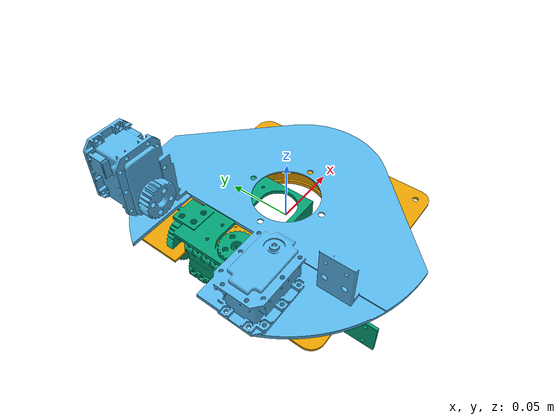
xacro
<?xml version="1.0"?>
<robot name="newrobo" xmlns:xacro="http://www.ros.org/wiki/xacro">
	<xacro:include filename="$(find xacro)/define.xacro" />
	<xacro:include filename="$(find shinobi_newrobo_display)/robot/config.xacro" />
	<xacro:include filename="$(find shinobi_newrobo_display)/robot/flipper_macro.xacro" />
	<xacro:include filename="$(find shinobi_newrobo_display)/robot/starWheel_macro.xacro" />

	<link name="arm_base">
		<visual>
			<origin rpy="0 0 0"
							xyz="0 0 0"/>
			<geometry>
				<mesh filename="${robotPackagePath}/${modelDataResourseFolder}/arm_base.stl"/>
			</geometry>
		</visual>
	</link>

  <joint name="joint_arm_yaw" type="revolute">
    <axis xyz="0 0 1"/>
    <limit 	lower="${DEG2RAD*armYawAngle_min}" effort="1000.0"
						upper="${DEG2RAD*armYawAngle_max}" velocity="0.5"/>
    <origin rpy="0 0 0"
						xyz="0 0 ${armYawStage_fromBodyTop}"/>
    <parent link="arm_base"/>
    <child link="arm_yaw"/>
  </joint>

	<link name="arm_yaw">
		<visual>
			<origin rpy="0 0 0"
							xyz="0 0 0"/>
			<geometry>
				<mesh filename="${robotPackagePath}/${modelDataResourseFolder}/arm_yaw.stl"/>
			</geometry>
		</visual>
	</link>

  <joint name="joint_arm_pitch" type="revolute">
    <axis xyz="0 1 0"/>
    <limit 	lower="${DEG2RAD*armPitchAngle_min}" effort="1000.0"
						upper="${DEG2RAD*armPitchAngle_max}" velocity="0.5"/>
    <origin rpy="0 0 0"
						xyz="${-armPitchAxis_fromYawAxis} 0 0"/>
    <parent link="arm_yaw"/>
    <child link="arm_pitch"/>
  </joint>

	<link name="arm_pitch">
		<visual>
			<origin rpy="0 0 0"
							xyz="${-armLinearAxis_fromPitchAxis}
									0
									0"/>
			<geometry>
				<mesh filename="${robotPackagePath}/${modelDataResourseFolder}/arm_pitch.stl"/>
			</geometry>
		</visual>
	</link>

</robot>

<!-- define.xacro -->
<robot>

	<property name="PI" 		value= "3.141592653" />
	<property name="DEG2RAD" 	value= "0.017453293" />
	<property name="RAD2DEG" 	value="57.295779513" />

    <property name="arm_linear_frame_left_A" value="arm_linear_frame_left_A"/>
    <property name="arm_linear_frame_left_B" value="arm_linear_frame_left_B"/>
    <property name="joint_armLinear_left_A" value="joint_armLinear_left_A"/>
    <property name="joint_armLinear_left_B" value="joint_armLinear_left_B"/>
    <property name="joint_armLinear_left_C" value="joint_armLinear_left_C"/>

    <property name="arm_linear_frame_right_A" value="arm_linear_frame_right_A"/>
    <property name="arm_linear_frame_right_B" value="arm_linear_frame_right_B"/>
    <property name="joint_armLinear_right_A" value="joint_armLinear_right_A"/>
    <property name="joint_armLinear_right_B" value="joint_armLinear_right_B"/>
    <property name="joint_armLinear_right_C" value="joint_armLinear_right_C"/>

</robot>

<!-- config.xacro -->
<robot>

	<property name="robotPackagePath" value="package://shinobi_newrobo_display/robot"/>
	<property name="modelDataResourseFolder" value="newRobotStls"/>

	<property name="bodyFront_depth" 	value="0.262" />
  <property name="bodyFront_height" value="0.072" />
  <property name="bodyFront_width" 	value="0.262" />

	<property name="bodyPitchAngle_max"	value=  "0" />
	<property name="bodyPitchAngle_min"	value="-90" />

	<property name="bodyLink_length" value="0.038" />

  <property name="bodyBack_depth" 	value="0.112" />
  <property name="bodyBack_height" 	value="0.072" />
  <property name="bodyBack_width" 	value="0.340" />

  <property name="starWheel_width" 	value="0.018" />
  <property name="starWheel_radius" value="0.134" />
  <property name="starWheelAxis_radius" value="0.134" />

	<property name="frontwheelAxis_fromBodyCenter" value="0.070" />
  <property name="backwheelAxis_fromBodyCenter" value="-0.100" />
	<property name="frontwheel_tread" value="0.372"/> <!-- from outside to outside -->
  <property name="backwheel_tread" value="0.386"/> <!-- from outside to outside -->

  <property name="flipper_width" 		value="0.025" />
  <property name="flipper_length" 	value="0.178" />
  <property name="flipper_tread" 	value="0.320" /> <!-- from outside to outside -->

  <property name="flipperBigPulley_radius" value="0.032" />
  <property name="flipperAngle_max" value= "90" />
  <property name="flipperAngle_min" value="-90" />
  <property name="flipperAxis_fromBodyCenter" value="0.070" />
  <property name="flipperOffset_fromBodySide" value="0.010" />

	<property name="armYawAngle_max"	value= "90" />
	<property name="armYawAngle_min"	value="-90" />
	<property name="armPitchAngle_max"	value= "90" />
	<property name="armPitchAngle_min"	value="-90" />

  <property name="armBase_fromBodyCenter_X" value="0.040" />
  <property name="armYawStage_fromBodyTop" value="0.020" />
  <property name="armPitchAxis_fromYawAxis" value="0.045" />
  <property name="armPitchAxis_fromYawStage" value="0.045" />
  <property name="armLinearAxis_fromPitchAxis" value="0.010" />
  <property name="armLinearAxis_fromYawStage" value="0.055" />

	<property name="armLinearBase_ArmLinearAxis" value="0.025" />

  <property name="armLinear_frame_length" value="0.200" />

  <property name="arm_linear_frame_left_A" value="arm_linear_frame_left_A" />
  <property name="arm_linear_frame_left_B" value="arm_linear_frame_left_B" />
  <property name="joint_armLinear_left_A" value="joint_armLinear_left_A" />
  <property name="joint_armLinear_left_B" value="joint_armLinear_left_B" />
  <property name="joint_armLinear_left_C" value="joint_armLinear_left_C" />

  <property name="arm_linear_frame_right_A" value="arm_linear_frame_right_A" />
  <property name="arm_linear_frame_right_B" value="arm_linear_frame_right_B" />
  <property name="joint_armLinear_right_A" value="joint_armLinear_right_A" />
  <property name="joint_armLinear_right_B" value="joint_armLinear_right_B" />
  <property name="joint_armLinear_right_C" value="joint_armLinear_right_C" />

</robot>
